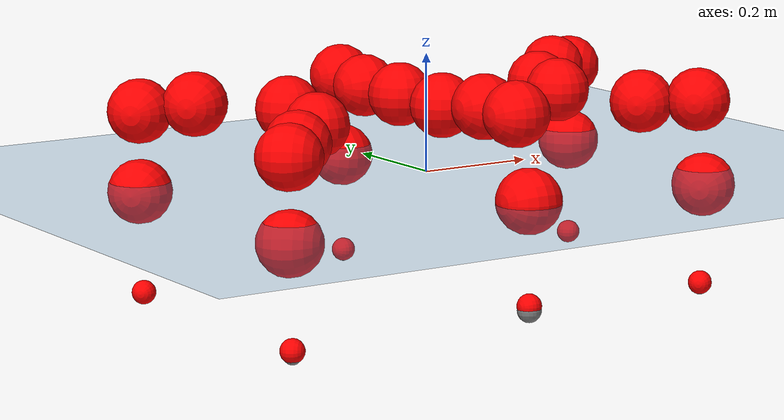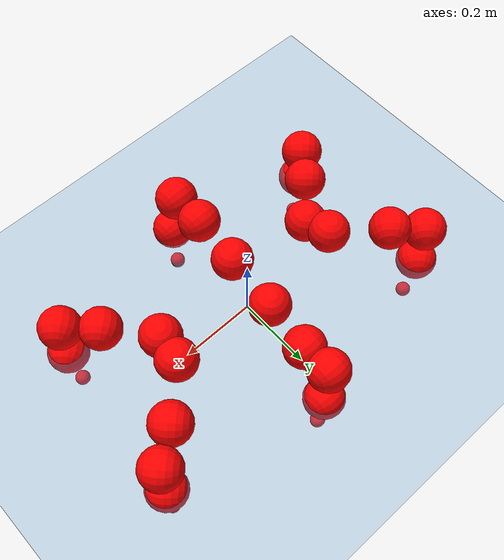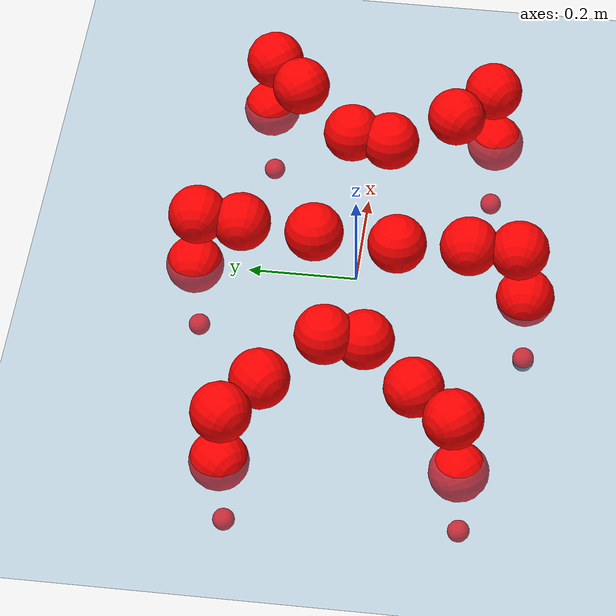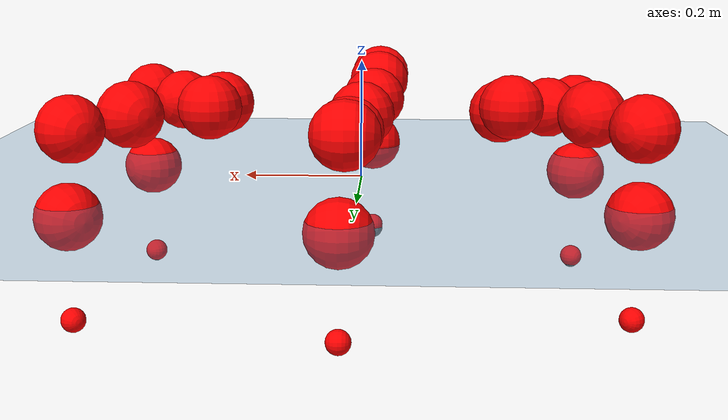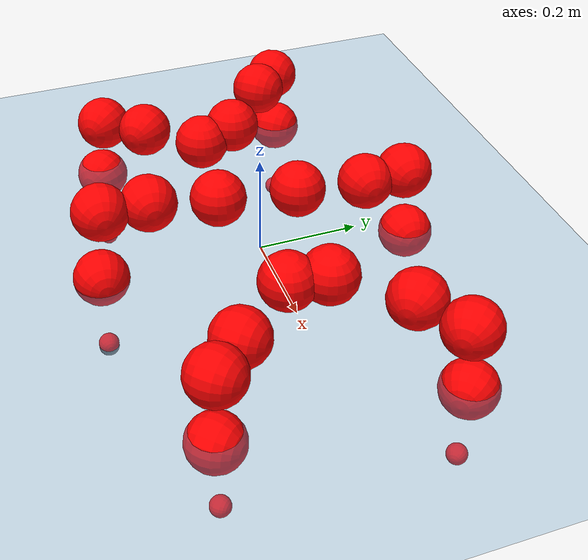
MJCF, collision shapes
<mujoco model="Golem">
  <compiler angle="radian" assetdir="assets" balanceinertia="true" inertiafromgeom="false"/>

  <option timestep="0.005" density="1.2" viscosity="2e-05"/>

  <size nkey="1"/>

  <visual>
    <quality shadowsize="8192"/>
    <map shadowclip="0.5"/>
  </visual>

  <default>
    <default class="/">
      <joint armature="0.01" damping="0.01" frictionloss="0.01"/>
      <geom contype="0" conaffinity="0" group="1" solref="-1000 -80"/>
      <site size="0.01 0.005 0.005" group="5"/>
      <general forcelimited="true" biastype="affine" gainprm="25" biasprm="0 -25 -0.5"/>
      <default class="visual">
        <geom type="mesh" group="2"/>
      </default>
      <default class="collision">
        <geom group="3"/>
      </default>
      <default class="foot">
        <geom size="0.01 0 0" condim="6" group="4" priority="1" solimp="0.015 1 0.01"/>
      </default>
      <default class="reward_collision_sphere">
        <geom group="5" rgba="1 0 0 1"/>
      </default>
    </default>
  </default>

  <asset>
    <texture type="skybox" colorspace="auto" name="//unnamed_texture_0" builtin="gradient" rgb1="0.95 0.95 0.95" rgb2="0.95 0.95 0.95" width="100" height="600"/>
    <texture type="2d" colorspace="auto" name="texplane" builtin="checker" rgb1="0.345 0.575 0.748" rgb2="0.345 0.575 0.748" markrgb="1 1 1" width="512" height="512"/>
    <material name="MatPlane" class="/" texture="texplane" texuniform="true" texrepeat="2 2" specular="0.9"/>
    <mesh name="body" class="/" file="body.stl" scale="0.001 0.001 0.001"/>
    <mesh name="coxa" class="/" file="coxa.stl" scale="0.001 0.001 0.001"/>
    <mesh name="femur" class="/" file="femur.stl" scale="0.001 0.001 0.001"/>
    <mesh name="tibia" class="/" file="tibia.stl" scale="0.001 0.001 0.001"/>
    <mesh name="tarsus" class="/" file="tarsus.stl" scale="0.001 0.001 0.001"/>
  </asset>

  <worldbody>
    <geom name="floor" class="/" size="100 100 0.125" type="plane" group="0" material="MatPlane"/>
    <light name="toplight_shadow" class="/" pos="0 0 5" dir="0.0990148 0.0990148 -0.990148" type="directional" ambient="0.04 0.04 0.04" diffuse="0.55 0.55 0.55" specular="0.12 0.12 0.12"/>
    <light name="toplight_fill" class="/" pos="0 0 5" dir="0.0990148 0.0990148 -0.990148" type="directional" castshadow="false" ambient="0.04 0.04 0.04" diffuse="0.3 0.3 0.3" specular="0.08 0.08 0.08"/>
    <body name="trunk" pos="-0.00355417 -0.000733355 0.0136344" quat="0.999992 -0.00293064 -0.00255855 -1.28437e-05">
      <inertial pos="5.52736e-05 -0.0115031 0.0118789" quat="0.999373 -0.0255902 -0.0232359 0.00761465" mass="7.43248" diaginertia="0.0832972 0.00438195 0.0829831"/>
      <joint name="//unnamed_joint_0" type="free"/>
      <geom name="//unnamed_geom_1" class="/" pos="0 0 0.1025" quat="1 0 0 0" type="mesh" rgba="0.9 0.9 0.9 1" mesh="body"/>
      <site name="imu" class="/" pos="0.243666 0.00362856 0.0988545" size="0.0134917"/>
      <camera name="track" class="/" pos="0 -1.71946 0" quat="0.707107 0.707107 0 0" mode="trackcom"/>
      <camera name="ego_camera" class="/" pos="0.206207 0 0.160157" quat="-0.5 -0.5 0.5 0.5"/>
      <body name="coxa_RR" pos="-0.269042 -0.0770505 0.0963123" quat="0.386278 -0.00632815 -0.00200757 -0.922358">
        <inertial pos="0.0148124 0.00935624 -0.00192438" quat="0.99807 -0.00948485 -0.0363555 0.0494491" mass="0.450306" diaginertia="0.0996331 0.00459639 0.12575"/>
        <joint name="coxa_joint_RR" class="/" pos="0 0 0" axis="-0.00988602 -0.01001 -0.999901" range="-2.98375 3.06724" armature="0.0169694" damping="0" frictionloss="0.00507734"/>
        <geom name="//unnamed_geom_2" class="/" type="mesh" rgba="0.2 0.2 0.2 1" mesh="coxa"/>
        <geom name="//unnamed_geom_3" class="reward_collision_sphere" size="0.0539668" pos="-0.0475863 0 0"/>
        <body name="femur_RR" pos="0.0875721 0.00111362 -0.00852186" quat="0.499877 -0.500003 0.500176 0.499945">
          <inertial pos="0.0014129 0.00685628 -0.0135261" quat="0.999995 0.00108245 0.00298556 -0.000140632" mass="0.482616" diaginertia="0.0999882 0.00459048 0.122485"/>
          <joint name="femur_joint_RR" class="/" pos="0 0 0" axis="-0.0219223 0.0584144 -0.998052" stiffness="0.0218638" range="-3.24656 3.12888" armature="0.0185409" damping="0.0212669" frictionloss="0.0173161"/>
          <geom name="//unnamed_geom_4" class="/" type="mesh" rgba="0.9 0.9 0.9 1" mesh="femur"/>
          <geom name="//unnamed_geom_5" class="reward_collision_sphere" size="0.0539668"/>
          <body name="tibia_RR" pos="0.00505238 -0.0961552 0.00952808" quat="-0.000116024 1 4.12461e-05 6.44431e-05">
            <inertial pos="0.0075985 -0.0126179 0.0136087" quat="0.998003 0.0339906 -0.0526185 0.0081055" mass="0.552764" diaginertia="0.127383 0.00514804 0.110588"/>
            <joint name="tibia_joint_RR" class="/" pos="0 0 0" axis="-0.0114074 0.00300824 0.99993" range="-3.13574 3.351" armature="0.0137518" damping="0" frictionloss="0.0116789"/>
            <geom name="//unnamed_geom_6" class="/" type="mesh" rgba="0.2 0.2 0.2 1" mesh="tibia"/>
            <geom name="//unnamed_geom_7" class="reward_collision_sphere" size="0.0539668"/>
            <body name="tarsus_RR" pos="0.132991 0.0130708 -0.00276739" quat="0.999979 0.00164209 0.00600352 -0.0020212">
              <inertial pos="0.089229 0.0145432 -0.00674157" quat="0.495969 0.500323 0.487891 0.515416" mass="0.509588" diaginertia="0.0983136 0.00355539 0.092891"/>
              <joint name="tarsus_joint_RR" class="/" pos="0 0 0" axis="0.00645371 -0.000303434 0.999979" stiffness="0.0233989" range="-3.11804 3.1781" armature="0.0145456" damping="0.0605209" frictionloss="0.0157045"/>
              <geom name="//unnamed_geom_8" class="/" type="mesh" rgba="0.9 0.9 0.9 1" mesh="tarsus"/>
              <geom name="foot_1" class="foot" size="0.0151178" pos="0.177656 0 0" quat="0 -0.707107 0 0.707107"/>
              <geom name="//unnamed_geom_10" class="reward_collision_sphere" size="0.0539668"/>
              <geom name="//unnamed_geom_11" class="reward_collision_sphere" size="0.0202375" pos="0.170518 0 0"/>
              <site name="foot_1" class="foot" pos="0.177656 0 0" quat="0 -0.707107 0 0.707107" size="0.0134917"/>
            </body>
          </body>
        </body>
      </body>
      <body name="coxa_RM" pos="-0.014636 -0.12419 0.111144" quat="0.706851 -0.000341714 0.000345598 -0.707362">
        <inertial pos="-0.000522582 0.00928312 0.015516" quat="0.999635 0.00425135 -0.0224866 0.0143849" mass="0.555154" diaginertia="0.129882 0.00618486 0.109693"/>
        <joint name="coxa_joint_RM" class="/" pos="0 0 0" axis="-0.00167857 0.0107968 -0.99994" range="-3.11616 3.20204" armature="0.0190099" damping="0" frictionloss="0.00707988"/>
        <geom name="//unnamed_geom_12" class="/" type="mesh" rgba="0.2 0.2 0.2 1" mesh="coxa"/>
        <geom name="//unnamed_geom_13" class="reward_collision_sphere" size="0.0539668" pos="-0.0475863 0 0"/>
        <body name="femur_RM" pos="0.0842052 -0.00603874 0.0158059" quat="0.501314 -0.505142 0.494737 0.498749">
          <inertial pos="0.0042802 0.00940712 -0.000531308" quat="0.997531 0.0372891 0.0476694 0.0356158" mass="0.452301" diaginertia="0.0831335 0.00507081 0.105271"/>
          <joint name="femur_joint_RM" class="/" pos="0 0 0" axis="0.0179327 0.0237758 -0.999556" range="-2.89881 2.89695" armature="0.00308046" damping="0" frictionloss="0.0141083"/>
          <geom name="//unnamed_geom_14" class="/" type="mesh" rgba="0.9 0.9 0.9 1" mesh="femur"/>
          <geom name="//unnamed_geom_15" class="reward_collision_sphere" size="0.0539668"/>
          <body name="tibia_RM" pos="0.000639542 -0.0903239 -0.00132559" quat="-5.05395e-05 1 0.000266952 -0.00039845">
            <inertial pos="0.00606066 -0.000693132 0.0132156" quat="0.998263 -0.0536329 0.0233814 0.00690889" mass="0.658885" diaginertia="0.106168 0.00544486 0.101362"/>
            <joint name="tibia_joint_RM" class="/" pos="0 0 0" axis="0.0072523 -0.0166475 0.999835" range="-2.90434 3.38216" armature="0.0220196" damping="0.0510611" frictionloss="0.0175863"/>
            <geom name="//unnamed_geom_16" class="/" type="mesh" rgba="0.2 0.2 0.2 1" mesh="tibia"/>
            <geom name="//unnamed_geom_17" class="reward_collision_sphere" size="0.0539668"/>
            <body name="tarsus_RM" pos="0.140286 0.0118972 -0.0145568" quat="0.999994 -0.00309851 -0.000800639 -0.00156643">
              <inertial pos="0.102654 -0.000951515 0.00740254" quat="0.493267 0.532748 0.459063 0.511984" mass="0.490291" diaginertia="0.105934 0.00468146 0.111402"/>
              <joint name="tarsus_joint_RM" class="/" pos="0 0 0" axis="-0.0168523 0.0110511 0.999797" stiffness="0.0314074" range="-3.17307 2.82235" armature="0.0123104" damping="0.0782504" frictionloss="0.0160225"/>
              <geom name="//unnamed_geom_18" class="/" type="mesh" rgba="0.9 0.9 0.9 1" mesh="tarsus"/>
              <geom name="foot_2" class="foot" size="0.0199485" pos="0.177656 0 0" quat="0 -0.707107 0 0.707107"/>
              <geom name="//unnamed_geom_20" class="reward_collision_sphere" size="0.0539668"/>
              <geom name="//unnamed_geom_21" class="reward_collision_sphere" size="0.0202375" pos="0.170518 0 0"/>
              <site name="foot_2" class="foot" pos="0.177656 0 0" quat="0 -0.707107 0 0.707107" size="0.0134917"/>
            </body>
          </body>
        </body>
      </body>
      <body name="coxa_RF" pos="0.281197 -0.0691842 0.106601" quat="0.922065 9.82418e-05 0.00460048 -0.387007">
        <inertial pos="-0.0133583 0.0130218 0.00381217" quat="0.999763 0.0119792 -0.0145772 -0.0108951" mass="0.515111" diaginertia="0.0855494 0.00485407 0.104647"/>
        <joint name="coxa_joint_RF" class="/" pos="0 0 0" axis="0.0373927 0.0504676 -0.998025" stiffness="0.0134911" range="-3.12082 3.20127" armature="0.0134206" damping="0.056781" frictionloss="0.0180538"/>
        <geom name="//unnamed_geom_22" class="/" type="mesh" rgba="0.2 0.2 0.2 1" mesh="coxa"/>
        <geom name="//unnamed_geom_23" class="reward_collision_sphere" size="0.0539668" pos="-0.0475863 0 0"/>
        <body name="femur_RF" pos="0.0986475 -0.0158758 -0.0120926" quat="0.498749 -0.494098 0.504501 0.502588">
          <inertial pos="-0.00300791 0.00195934 0.00739986" quat="0.999015 0.017976 -0.0164639 0.0370834" mass="0.540654" diaginertia="0.108921 0.00497157 0.117499"/>
          <joint name="femur_joint_RF" class="/" pos="0 0 0" axis="-0.0267372 0.00664122 -0.99962" stiffness="0.0513126" range="-3.30049 2.96562" armature="0.0147313" damping="0" frictionloss="0.0139496"/>
          <geom name="//unnamed_geom_24" class="/" type="mesh" rgba="0.9 0.9 0.9 1" mesh="femur"/>
          <geom name="//unnamed_geom_25" class="reward_collision_sphere" size="0.0539668"/>
          <body name="tibia_RF" pos="-0.00668703 -0.0955122 0.00680963" quat="0.000467578 0.999998 0.00135753 0.00119601">
            <inertial pos="0.00121494 0.0114814 0.000271403" quat="0.999374 0.0244572 -0.023835 -0.00922376" mass="0.531777" diaginertia="0.118525 0.00565815 0.10446"/>
            <joint name="tibia_joint_RF" class="/" pos="0 0 0" axis="-0.000371076 0.00118819 0.999999" stiffness="0.056029" range="-3.17133 3.37907" armature="0.0136408" damping="0.0892022" frictionloss="0.0134952"/>
            <geom name="//unnamed_geom_26" class="/" type="mesh" rgba="0.2 0.2 0.2 1" mesh="tibia"/>
            <geom name="//unnamed_geom_27" class="reward_collision_sphere" size="0.0539668"/>
            <body name="tarsus_RF" pos="0.144911 0.0131071 -0.000753323" quat="0.999987 -0.000600231 0.00511735 0.000296722">
              <inertial pos="0.0923695 -0.00131142 -0.00480001" quat="0.498697 0.501352 0.497629 0.502307" mass="0.505704" diaginertia="0.0900696 0.00385995 0.10256"/>
              <joint name="tarsus_joint_RF" class="/" pos="0 0 0" axis="0.00694913 -0.0168481 0.999834" range="-3.13676 3.21947" armature="0.0110487" damping="0.0230678" frictionloss="0.0154445"/>
              <geom name="//unnamed_geom_28" class="/" type="mesh" rgba="0.9 0.9 0.9 1" mesh="tarsus"/>
              <geom name="foot_3" class="foot" size="0.0137562" pos="0.177656 0 0" quat="0 -0.707107 0 0.707107"/>
              <geom name="//unnamed_geom_30" class="reward_collision_sphere" size="0.0539668"/>
              <geom name="//unnamed_geom_31" class="reward_collision_sphere" size="0.0202375" pos="0.170518 0 0"/>
              <site name="foot_3" class="foot" pos="0.177656 0 0" quat="0 -0.707107 0 0.707107" size="0.0134917"/>
            </body>
          </body>
        </body>
      </body>
      <body name="coxa_LR" pos="-0.281353 0.0604752 0.114372" quat="0.38272 -3.68021e-05 0.0001197 0.923865">
        <inertial pos="0.000556541 0.00634868 0.0110059" quat="0.998634 0.0349346 0.0351911 -0.0164604" mass="0.63177" diaginertia="0.119147 0.00476249 0.129169"/>
        <joint name="coxa_joint_LR" class="/" pos="0 0 0" axis="-0.0176627 0.0559376 -0.998278" range="-3.14304 3.20167" armature="0.00878676" damping="0.00104893" frictionloss="0.00592516"/>
        <geom name="//unnamed_geom_32" class="/" type="mesh" rgba="0.2 0.2 0.2 1" mesh="coxa"/>
        <geom name="//unnamed_geom_33" class="reward_collision_sphere" size="0.0539668" pos="-0.0475863 0 0"/>
        <body name="femur_LR" pos="0.10541 0.0142604 0.00554856" quat="0.496416 -0.498838 0.501882 0.502838">
          <inertial pos="0.00141955 0.0074712 0.0148256" quat="0.999151 0.0242748 -0.0316969 -0.0101878" mass="0.512035" diaginertia="0.116561 0.00552182 0.122906"/>
          <joint name="femur_joint_LR" class="/" pos="0 0 0" axis="-0.0748437 0.00401699 0.997187" range="-3.11952 3.12768" armature="0.00714429" damping="0" frictionloss="0.0153573"/>
          <geom name="//unnamed_geom_34" class="/" type="mesh" rgba="0.9 0.9 0.9 1" mesh="femur"/>
          <geom name="//unnamed_geom_35" class="reward_collision_sphere" size="0.0539668"/>
          <body name="tibia_LR" pos="0.0112834 -0.0916602 0.00959403" quat="-0.000506974 1 -0.000404174 -0.000622782">
            <inertial pos="0.00248263 -0.0126358 0.0011041" quat="0.999764 -0.00726361 0.0164827 0.0121685" mass="0.441974" diaginertia="0.104179 0.00416355 0.0792526"/>
            <joint name="tibia_joint_LR" class="/" pos="0 0 0" axis="0.0499228 0.0610776 -0.996884" stiffness="0.0082743" range="-3.37476 3.45751" armature="0.00296117" damping="0.0351704" frictionloss="0.00668115"/>
            <geom name="//unnamed_geom_36" class="/" type="mesh" rgba="0.2 0.2 0.2 1" mesh="tibia"/>
            <geom name="//unnamed_geom_37" class="reward_collision_sphere" size="0.0539668"/>
            <body name="tarsus_LR" pos="0.135811 0.00629745 0.00647717" quat="0.999997 -0.00181868 -0.000684894 -0.00144027">
              <inertial pos="0.0804413 0.0031819 0.015949" quat="0.501059 0.497922 0.501572 0.499438" mass="0.484286" diaginertia="0.0882312 0.00495308 0.101869"/>
              <joint name="tarsus_joint_LR" class="/" pos="0 0 0" axis="-0.00313937 0.00751555 -0.999967" stiffness="0.0175136" range="-3.3255 3.31462" armature="0.0211782" damping="0" frictionloss="0.0140127"/>
              <geom name="//unnamed_geom_38" class="/" type="mesh" rgba="0.9 0.9 0.9 1" mesh="tarsus"/>
              <geom name="foot_4" class="foot" size="0.0126967" pos="0.177656 0 0" quat="0.707107 0 -0.707107 0"/>
              <geom name="//unnamed_geom_40" class="reward_collision_sphere" size="0.0539668"/>
              <geom name="//unnamed_geom_41" class="reward_collision_sphere" size="0.0202375" pos="0.170518 0 0"/>
              <site name="foot_4" class="foot" pos="0.177656 0 0" quat="0.707107 0 -0.707107 0" size="0.0134917"/>
            </body>
          </body>
        </body>
      </body>
      <body name="coxa_LM" pos="0.0011625 0.124349 0.107552" quat="0.70717 -0.000911533 0.00212965 0.70704">
        <inertial pos="-9.38584e-05 0.0133394 -0.0152257" quat="0.99923 -0.0140485 -0.0259167 -0.0258887" mass="0.457787" diaginertia="0.11401 0.00496926 0.10965"/>
        <joint name="coxa_joint_LM" class="/" pos="0 0 0" axis="0.0548635 0.0211968 -0.998269" stiffness="0.0208229" range="-3.10965 3.26222" armature="0.023888" damping="0" frictionloss="0.0141253"/>
        <geom name="//unnamed_geom_42" class="/" type="mesh" rgba="0.2 0.2 0.2 1" mesh="coxa"/>
        <geom name="//unnamed_geom_43" class="reward_collision_sphere" size="0.0539668" pos="-0.0475863 0 0"/>
        <body name="femur_LM" pos="0.0874172 -0.0139758 -0.00297992" quat="0.499961 -0.500132 0.500006 0.499901">
          <inertial pos="0.0146238 -0.00928535 0.00960493" quat="0.99998 0.00262166 0.00551533 0.00169624" mass="0.523819" diaginertia="0.125915 0.00490393 0.11627"/>
          <joint name="femur_joint_LM" class="/" pos="0 0 0" axis="0.0486208 0.0483554 0.997646" range="-3.15017 3.11833" armature="0.0156968" damping="0.0283988" frictionloss="0.00578877"/>
          <geom name="//unnamed_geom_44" class="/" type="mesh" rgba="0.9 0.9 0.9 1" mesh="femur"/>
          <geom name="//unnamed_geom_45" class="reward_collision_sphere" size="0.0539668"/>
          <body name="tibia_LM" pos="-0.00827079 -0.0806213 -0.00184812" quat="0.0010596 0.999996 -0.00119061 -0.00214733">
            <inertial pos="-0.00412993 -0.000481495 -0.0107181" quat="0.998365 0.0459272 -0.0101112 -0.0324813" mass="0.599903" diaginertia="0.098132 0.00487523 0.125688"/>
            <joint name="tibia_joint_LM" class="/" pos="0 0 0" axis="0.00125713 -0.0234642 -0.999724" range="-3.18721 2.88207" armature="0.011656" damping="0.0353182" frictionloss="0.00854347"/>
            <geom name="//unnamed_geom_46" class="/" type="mesh" rgba="0.2 0.2 0.2 1" mesh="tibia"/>
            <geom name="//unnamed_geom_47" class="reward_collision_sphere" size="0.0539668"/>
            <body name="tarsus_LM" pos="0.144384 0.0130356 0.0076805" quat="1 -3.99399e-05 -0.000367927 0.000505153">
              <inertial pos="0.0811588 0.00614163 0.00589726" quat="0.498553 0.499576 0.501194 0.500673" mass="0.486142" diaginertia="0.0962779 0.00452171 0.0928529"/>
              <joint name="tarsus_joint_LM" class="/" pos="0 0 0" axis="-0.00764305 -0.00297454 -0.999966" stiffness="0.0365817" range="-3.1144 3.15544" armature="0.0134462" damping="0.0453302" frictionloss="0.0168763"/>
              <geom name="//unnamed_geom_48" class="/" type="mesh" rgba="0.9 0.9 0.9 1" mesh="tarsus"/>
              <geom name="foot_5" class="foot" size="0.0134206" pos="0.177656 0 0" quat="0.707107 0 -0.707107 0"/>
              <geom name="//unnamed_geom_50" class="reward_collision_sphere" size="0.0539668"/>
              <geom name="//unnamed_geom_51" class="reward_collision_sphere" size="0.0202375" pos="0.170518 0 0"/>
              <site name="foot_5" class="foot" pos="0.177656 0 0" quat="0.707107 0 -0.707107 0" size="0.0134917"/>
            </body>
          </body>
        </body>
      </body>
      <body name="coxa_LF" pos="0.292703 0.0709441 0.109522" quat="0.924186 0.000680963 0.00109714 0.381941">
        <inertial pos="-0.0110799 0.00101318 -0.00574275" quat="0.997638 -0.00249285 0.0440071 -0.0526849" mass="0.481702" diaginertia="0.0800244 0.00438804 0.105366"/>
        <joint name="coxa_joint_LF" class="/" pos="0 0 0" axis="0.00403341 -0.0019568 -0.99999" range="-3.19672 3.3962" armature="0.0187316" damping="0.024115" frictionloss="0.0146019"/>
        <geom name="//unnamed_geom_52" class="/" type="mesh" rgba="0.2 0.2 0.2 1" mesh="coxa"/>
        <geom name="//unnamed_geom_53" class="reward_collision_sphere" size="0.0539668" pos="-0.0475863 0 0"/>
        <body name="femur_LF" pos="0.107727 0.00142802 0.00514251" quat="0.502022 -0.499931 0.500022 0.498017">
          <inertial pos="0.0118877 -0.0106585 -0.000298367" quat="0.999406 -0.00505023 -0.0327971 0.00928624" mass="0.522125" diaginertia="0.114646 0.00457424 0.103246"/>
          <joint name="femur_joint_LF" class="/" pos="0 0 0" axis="-0.0612639 -0.0294466 0.997687" stiffness="0.020745" range="-2.87757 3.11059" armature="0.0135314" damping="0.0529803" frictionloss="0.013457"/>
          <geom name="//unnamed_geom_54" class="/" type="mesh" rgba="0.9 0.9 0.9 1" mesh="femur"/>
          <geom name="//unnamed_geom_55" class="reward_collision_sphere" size="0.0539668"/>
          <body name="tibia_LF" pos="0.0141116 -0.0992065 -0.0131283" quat="-0.00509713 0.999986 -0.000962495 -0.000804095">
            <inertial pos="0.0116128 -0.000339493 0.00292297" quat="0.996897 0.0774419 0.00963138 0.0103234" mass="0.406857" diaginertia="0.113968 0.00459642 0.114272"/>
            <joint name="tibia_joint_LF" class="/" pos="0 0 0" axis="0.0167769 -0.00481451 -0.999848" stiffness="0.00500378" range="-3.12094 2.99112" armature="0.0135734" damping="0.0621749" frictionloss="0.015779"/>
            <geom name="//unnamed_geom_56" class="/" type="mesh" rgba="0.2 0.2 0.2 1" mesh="tibia"/>
            <geom name="//unnamed_geom_57" class="reward_collision_sphere" size="0.0539668"/>
            <body name="tarsus_LF" pos="0.137776 0.0116306 -0.00282346" quat="0.999999 0.000964057 -0.00052997 -0.000943774">
              <inertial pos="0.104108 0.00429535 0.00900403" quat="0.498559 0.483089 0.514898 0.502935" mass="0.670733" diaginertia="0.118473 0.00550478 0.126326"/>
              <joint name="tarsus_joint_LF" class="/" pos="0 0 0" axis="0.0291203 -0.0139536 -0.999479" stiffness="0.0439551" range="-3.04233 2.97474" armature="0.0190758" damping="0" frictionloss="0.0131038"/>
              <geom name="//unnamed_geom_58" class="/" type="mesh" rgba="0.9 0.9 0.9 1" mesh="tarsus"/>
              <geom name="foot_6" class="foot" size="0.00832439" pos="0.177656 0 0" quat="0.707107 0 -0.707107 0"/>
              <geom name="//unnamed_geom_60" class="reward_collision_sphere" size="0.0539668"/>
              <geom name="//unnamed_geom_61" class="reward_collision_sphere" size="0.0202375" pos="0.170518 0 0"/>
              <site name="foot_6" class="foot" pos="0.177656 0 0" quat="0.707107 0 -0.707107 0" size="0.0134917"/>
            </body>
          </body>
        </body>
      </body>
    </body>
  </worldbody>

  <contact>
    <pair class="/" geom1="floor" geom2="foot_1" name="//unnamed_contact_0"/>
    <pair class="/" geom1="floor" geom2="foot_2" name="//unnamed_contact_1"/>
    <pair class="/" geom1="floor" geom2="foot_3" name="//unnamed_contact_2"/>
    <pair class="/" geom1="floor" geom2="foot_4" name="//unnamed_contact_3"/>
    <pair class="/" geom1="floor" geom2="foot_5" name="//unnamed_contact_4"/>
    <pair class="/" geom1="floor" geom2="foot_6" name="//unnamed_contact_5"/>
  </contact>

  <actuator>
    <general name="coxa_joint_RR" class="/" joint="coxa_joint_RR" forcerange="-10.3979 10.3979" gainprm="30.2069" biasprm="0 -30.2069 -0.643813"/>
    <general name="femur_joint_RR" class="/" joint="femur_joint_RR" forcerange="-6.334 6.334" gainprm="30.2069" biasprm="0 -30.2069 -0.643813"/>
    <general name="tibia_joint_RR" class="/" joint="tibia_joint_RR" forcerange="-14.4765 14.4765" gainprm="30.2069" biasprm="0 -30.2069 -0.643813"/>
    <general name="tarsus_joint_RR" class="/" joint="tarsus_joint_RR" forcerange="-7.36574 7.36574" gainprm="30.2069" biasprm="0 -30.2069 -0.643813"/>
    <general name="coxa_joint_RM" class="/" joint="coxa_joint_RM" forcerange="-3.98494 3.98494" gainprm="30.2069" biasprm="0 -30.2069 -0.643813"/>
    <general name="femur_joint_RM" class="/" joint="femur_joint_RM" forcerange="-10.2871 10.2871" gainprm="30.2069" biasprm="0 -30.2069 -0.643813"/>
    <general name="tibia_joint_RM" class="/" joint="tibia_joint_RM" forcerange="-7.27958 7.27958" gainprm="30.2069" biasprm="0 -30.2069 -0.643813"/>
    <general name="tarsus_joint_RM" class="/" joint="tarsus_joint_RM" forcerange="-14.5022 14.5022" gainprm="30.2069" biasprm="0 -30.2069 -0.643813"/>
    <general name="coxa_joint_RF" class="/" joint="coxa_joint_RF" forcerange="-5.48078 5.48078" gainprm="30.2069" biasprm="0 -30.2069 -0.643813"/>
    <general name="femur_joint_RF" class="/" joint="femur_joint_RF" forcerange="-10.1296 10.1296" gainprm="30.2069" biasprm="0 -30.2069 -0.643813"/>
    <general name="tibia_joint_RF" class="/" joint="tibia_joint_RF" forcerange="-9.9283 9.9283" gainprm="30.2069" biasprm="0 -30.2069 -0.643813"/>
    <general name="tarsus_joint_RF" class="/" joint="tarsus_joint_RF" forcerange="-9.64298 9.64298" gainprm="30.2069" biasprm="0 -30.2069 -0.643813"/>
    <general name="coxa_joint_LR" class="/" joint="coxa_joint_LR" forcerange="-4.82627 4.82627" gainprm="30.2069" biasprm="0 -30.2069 -0.643813"/>
    <general name="femur_joint_LR" class="/" joint="femur_joint_LR" forcerange="-9.78489 9.78489" gainprm="30.2069" biasprm="0 -30.2069 -0.643813"/>
    <general name="tibia_joint_LR" class="/" joint="tibia_joint_LR" forcerange="-5.85047 5.85047" gainprm="30.2069" biasprm="0 -30.2069 -0.643813"/>
    <general name="tarsus_joint_LR" class="/" joint="tarsus_joint_LR" forcerange="-4.58242 4.58242" gainprm="30.2069" biasprm="0 -30.2069 -0.643813"/>
    <general name="coxa_joint_LM" class="/" joint="coxa_joint_LM" forcerange="-14.3854 14.3854" gainprm="30.2069" biasprm="0 -30.2069 -0.643813"/>
    <general name="femur_joint_LM" class="/" joint="femur_joint_LM" forcerange="-7.77009 7.77009" gainprm="30.2069" biasprm="0 -30.2069 -0.643813"/>
    <general name="tibia_joint_LM" class="/" joint="tibia_joint_LM" forcerange="-4.97642 4.97642" gainprm="30.2069" biasprm="0 -30.2069 -0.643813"/>
    <general name="tarsus_joint_LM" class="/" joint="tarsus_joint_LM" forcerange="-4.11708 4.11708" gainprm="30.2069" biasprm="0 -30.2069 -0.643813"/>
    <general name="coxa_joint_LF" class="/" joint="coxa_joint_LF" forcerange="-13.7605 13.7605" gainprm="30.2069" biasprm="0 -30.2069 -0.643813"/>
    <general name="femur_joint_LF" class="/" joint="femur_joint_LF" forcerange="-13.6551 13.6551" gainprm="30.2069" biasprm="0 -30.2069 -0.643813"/>
    <general name="tibia_joint_LF" class="/" joint="tibia_joint_LF" forcerange="-11.9973 11.9973" gainprm="30.2069" biasprm="0 -30.2069 -0.643813"/>
    <general name="tarsus_joint_LF" class="/" joint="tarsus_joint_LF" forcerange="-12.6991 12.6991" gainprm="30.2069" biasprm="0 -30.2069 -0.643813"/>
  </actuator>

  <sensor>
    <gyro site="imu" name="imu_angular_velocity"/>
    <velocimeter site="imu" name="imu_linear_velocity"/>
    <framelinvel objtype="site" objname="foot_1" name="foot_1_global_linear_velocity"/>
    <framelinvel objtype="site" objname="foot_2" name="foot_2_global_linear_velocity"/>
    <framelinvel objtype="site" objname="foot_3" name="foot_3_global_linear_velocity"/>
    <framelinvel objtype="site" objname="foot_4" name="foot_4_global_linear_velocity"/>
    <framelinvel objtype="site" objname="foot_5" name="foot_5_global_linear_velocity"/>
    <framelinvel objtype="site" objname="foot_6" name="foot_6_global_linear_velocity"/>
  </sensor>

  <keyframe>
    <key name="home" qpos="0 0 0.1457 1 0 0 0 0 0 0 0 0 0 0 0 0 0 0 0 0 0 0 0 0 0 0 0 0 0 0 0"/>
  </keyframe>
</mujoco>
